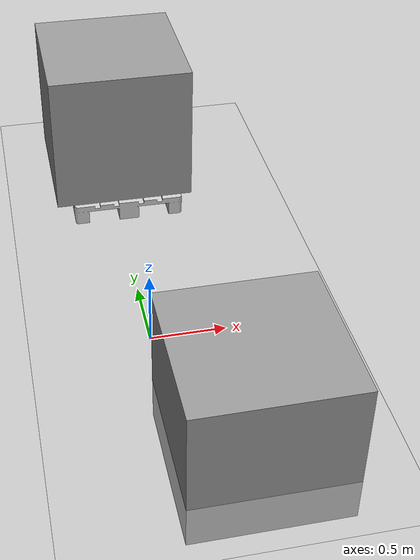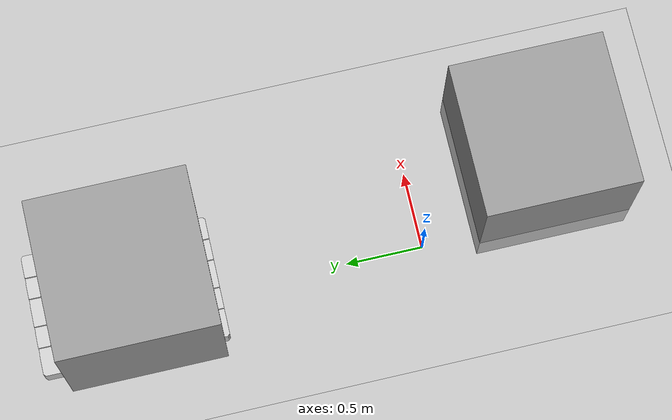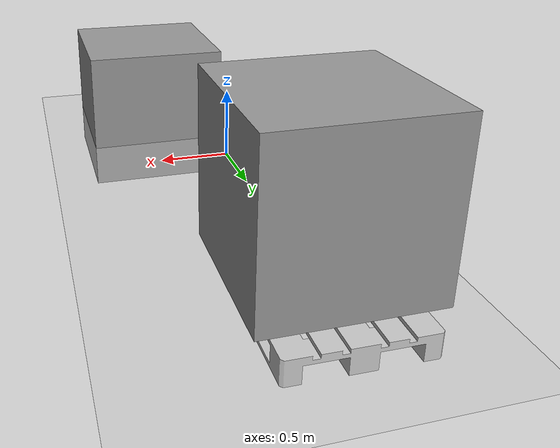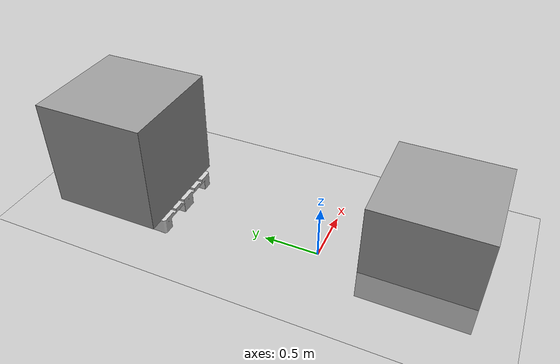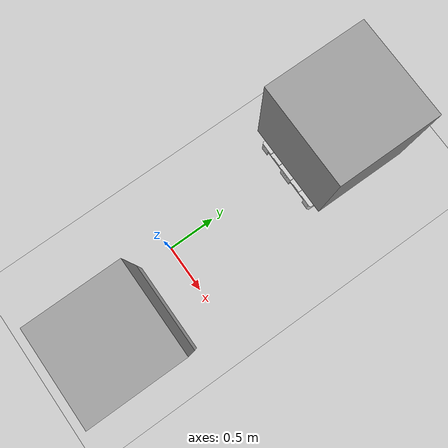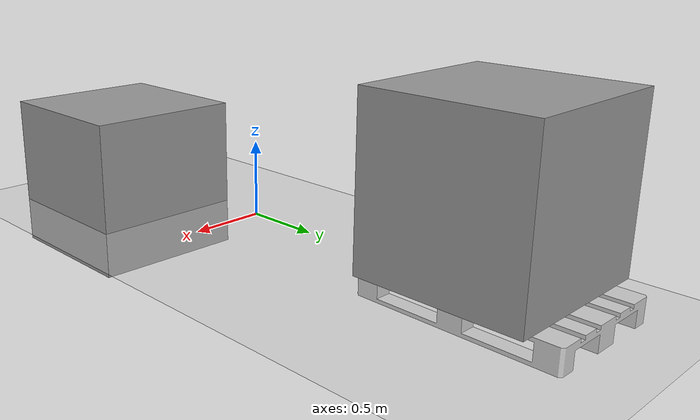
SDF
<sdf version="1.7">
 <world name="default">
  <light name="sun" type="directional">
   <pose>0 0 10 0 -0 0</pose>
   <diffuse>0.8 0.8 0.8 1</diffuse>
   <specular>0.2 0.2 0.2 1</specular>
   <attenuation>
    <range>1000</range>
    <constant>0.9</constant>
    <linear>0.01</linear>
    <quadratic>0.001</quadratic>
   </attenuation>
   <direction>-0.5 0.1 -0.9</direction>
   <spot><inner_angle>0</inner_angle><outer_angle>0</outer_angle><falloff>0</falloff></spot>
  </light>
  <model name="ground_plane">
   <static>1</static>
   <link name="link">
    <collision name="collision">
     <geometry><plane><normal>0 0 1</normal><size>100 100</size></plane></geometry>
     <surface>
      <contact><collide_bitmask>65535</collide_bitmask></contact>
      <friction><ode><mu>100</mu><mu2>50</mu2></ode></friction>
     </surface>
    </collision>
    <visual name="visual">
     <cast_shadows>0</cast_shadows>
     <geometry><plane><normal>0 0 1</normal><size>100 100</size></plane></geometry>
     <material>
      <script><uri>file://media/materials/scripts/gazebo.material</uri><name>Gazebo/Grey</name></script>
     </material>
    </visual>
   </link>
  </model>
  <gravity>0 0 -9.8</gravity>
  <magnetic_field>6e-06 2.3e-05 -4.2e-05</magnetic_field>
  <atmosphere type="adiabatic"/>
  <physics type="ode">
   <max_step_size>0.001</max_step_size>
   <real_time_factor>1</real_time_factor>
   <real_time_update_rate>1000</real_time_update_rate>
  </physics>
  <scene><ambient>0.4 0.4 0.4 1</ambient><background>0.7 0.7 0.7 1</background><shadows>1</shadows></scene>
  <spherical_coordinates>
   <surface_model>EARTH_WGS84</surface_model>
   <latitude_deg>0</latitude_deg>
   <longitude_deg>0</longitude_deg>
   <elevation>0</elevation>
   <heading_deg>0</heading_deg>
  </spherical_coordinates>
  <model name="euro_pallet">
   <link name="link">
    <inertial>
     <mass>20</mass>
     <inertia><ixx>2.43</ixx><ixy>0</ixy><ixz>0</ixz><iyy>1.1</iyy><iyz>0</iyz><izz>3.47</izz></inertia>
    </inertial>
    <collision name="collision">
     <pose>0 0 0.05 0 -0 0</pose>
     <geometry><mesh><uri>model://euro_pallet/meshes/pallet.dae</uri><scale>0.1 0.1 0.1</scale></mesh></geometry>
    </collision>
    <visual name="visual">
     <pose>0 0 0.05 0 -0 0</pose>
     <geometry><mesh><uri>model://euro_pallet/meshes/pallet.dae</uri><scale>0.1 0.1 0.1</scale></mesh></geometry>
    </visual>
   </link>
   <pose>0.087352 1.92641 0.072 3e-06 6e-06 -0.008715</pose>
  </model>
  <model name="unit_box">
   <pose>0.06063 1.8666 0.643996 1.6e-05 1e-05 -0.001106</pose>
   <link name="link">
    <inertial>
     <mass>1</mass>
     <inertia>
      <ixx>0.166667</ixx>
      <ixy>0</ixy>
      <ixz>0</ixz>
      <iyy>0.166667</iyy>
      <iyz>0</iyz>
      <izz>0.166667</izz>
     </inertia>
    </inertial>
    <collision name="collision"><geometry><box><size>1 1 1</size></box></geometry></collision>
    <visual name="visual">
     <geometry><box><size>1 1 1</size></box></geometry>
     <material>
      <script><name>Gazebo/Grey</name><uri>file://media/materials/scripts/gazebo.material</uri></script>
     </material>
    </visual>
   </link>
  </model>
  <model name="unit_box_0">
   <static>true</static>
   <pose>0.442827 -0.871548 0.197437 1e-06 -0.003321 -0.000232</pose>
   <link name="link">
    <inertial>
     <mass>1</mass>
     <inertia>
      <ixx>0.166667</ixx>
      <ixy>0</ixy>
      <ixz>0</ixz>
      <iyy>0.166667</iyy>
      <iyz>0</iyz>
      <izz>0.166667</izz>
     </inertia>
    </inertial>
    <collision name="collision"><geometry><box><size>1 1 1</size></box></geometry></collision>
    <visual name="visual">
     <geometry><box><size>1 1 1</size></box></geometry>
     <material>
      <script><name>Gazebo/Grey</name><uri>file://media/materials/scripts/gazebo.material</uri></script>
     </material>
    </visual>
   </link>
  </model>
 </world>
</sdf>
